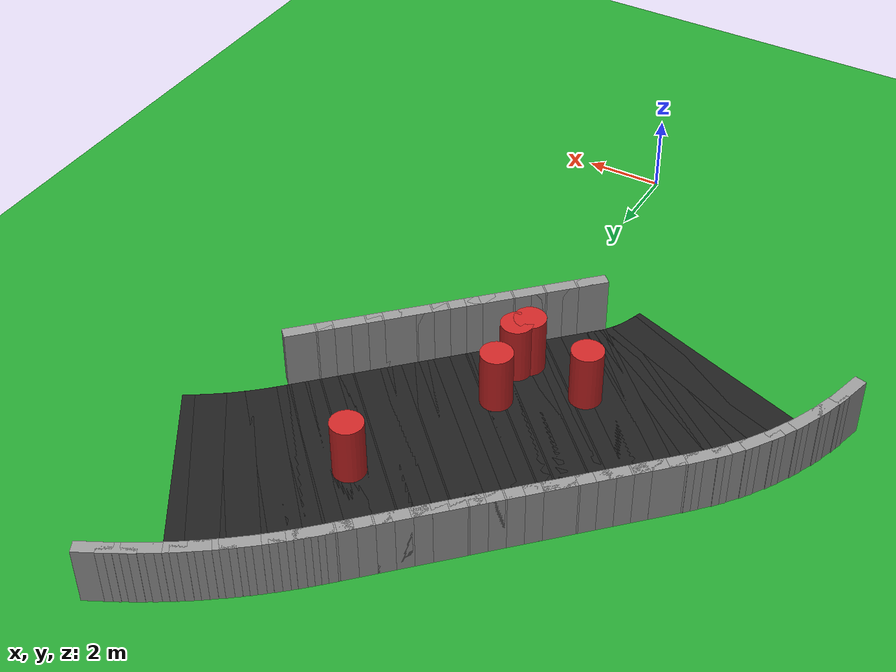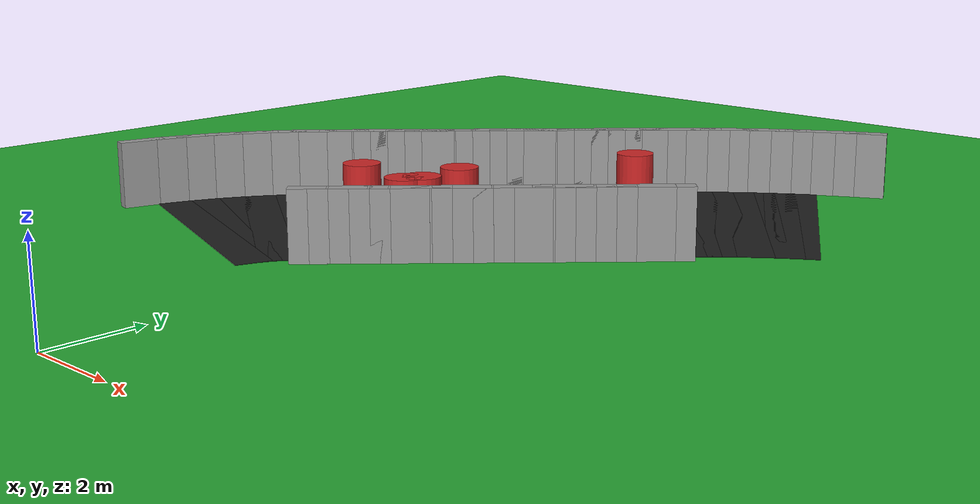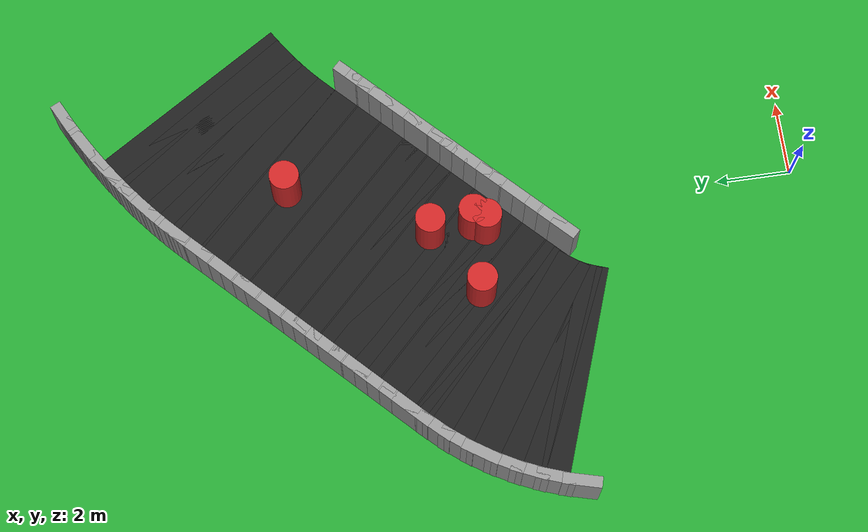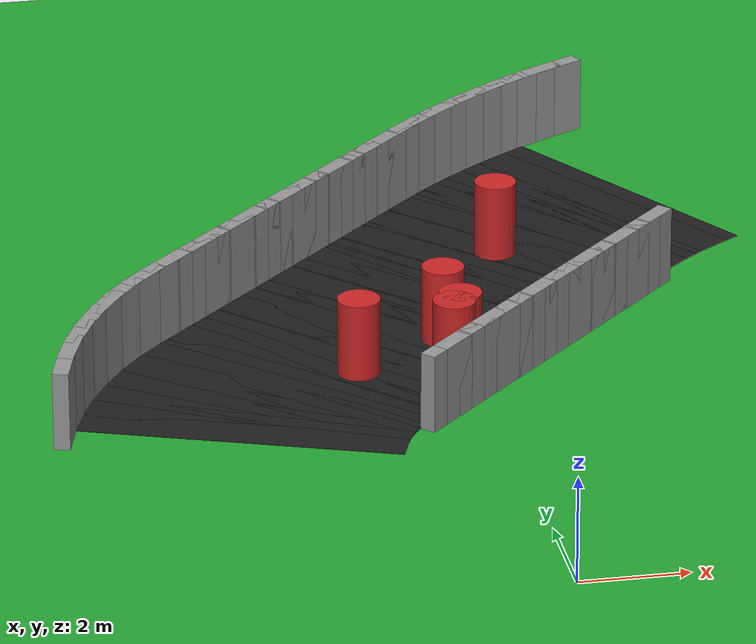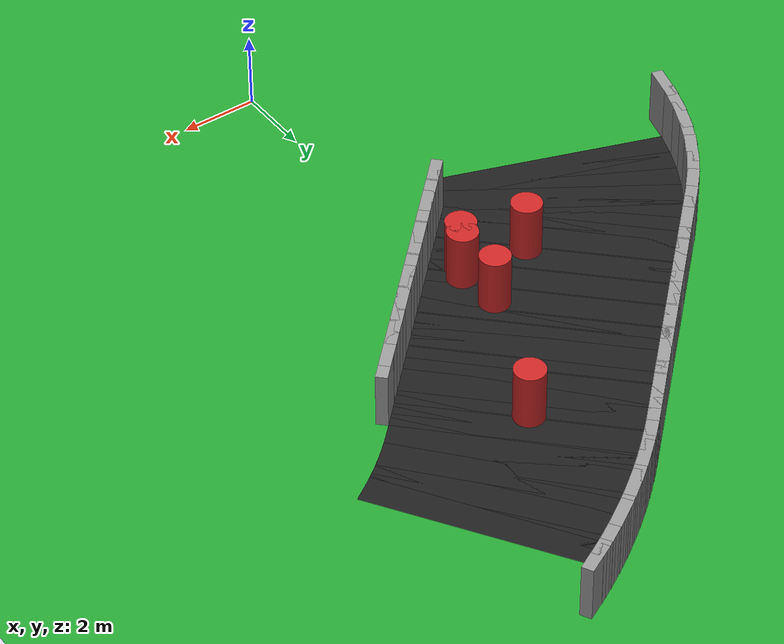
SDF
<sdf version="1.6">
 <world name="obstacle_mid">
  <include><uri>model://sun</uri></include>
  <model name="ground_plane">
   <static>true</static>
   <link name="link">
    <collision name="collision">
     <surface><friction><ode><mu>100</mu><mu2>50</mu2></ode></friction></surface>
     <geometry><plane><normal>0 0 1</normal><size>120 120</size></plane></geometry>
    </collision>
    <visual name="visual">
     <geometry><plane><normal>0 0 1</normal><size>120 120</size></plane></geometry>
     <material>
      <script><uri>file://media/materials/scripts/gazebo.material</uri><name>Gazebo/Green</name></script>
     </material>
    </visual>
   </link>
  </model>
  <model name="curbR_217">
   <static>true</static>
   <pose>3.685 19.184 0.750 0 0 -2.66708</pose>
   <link name="link">
    <collision name="collision"><geometry><box><size>0.856 0.300 1.500</size></box></geometry></collision>
    <visual name="visual">
     <geometry><box><size>0.856 0.300 1.500</size></box></geometry>
     <material>
      <script><uri>file://media/materials/scripts/gazebo.material</uri><name>Gazebo/Grey</name></script>
     </material>
    </visual>
   </link>
  </model>
  <model name="curbR_218">
   <static>true</static>
   <pose>3.247 18.950 0.750 0 0 -2.63436</pose>
   <link name="link">
    <collision name="collision"><geometry><box><size>0.856 0.300 1.500</size></box></geometry></collision>
    <visual name="visual">
     <geometry><box><size>0.856 0.300 1.500</size></box></geometry>
     <material>
      <script><uri>file://media/materials/scripts/gazebo.material</uri><name>Gazebo/Grey</name></script>
     </material>
    </visual>
   </link>
  </model>
  <model name="curbR_219">
   <static>true</static>
   <pose>2.818 18.702 0.750 0 0 -2.60163</pose>
   <link name="link">
    <collision name="collision"><geometry><box><size>0.856 0.300 1.500</size></box></geometry></collision>
    <visual name="visual">
     <geometry><box><size>0.856 0.300 1.500</size></box></geometry>
     <material>
      <script><uri>file://media/materials/scripts/gazebo.material</uri><name>Gazebo/Grey</name></script>
     </material>
    </visual>
   </link>
  </model>
  <model name="asphalt_220">
   <static>true</static>
   <pose>4.104 15.794 0.005 0 0 -2.56891</pose>
   <link name="link">
    <visual name="visual">
     <geometry><box><size>0.753 6.000 0.010</size></box></geometry>
     <material>
      <script><uri>file://media/materials/scripts/gazebo.material</uri><name>Gazebo/Black</name></script>
     </material>
    </visual>
   </link>
  </model>
  <model name="curbR_220">
   <static>true</static>
   <pose>2.397 18.441 0.750 0 0 -2.56891</pose>
   <link name="link">
    <collision name="collision"><geometry><box><size>0.856 0.300 1.500</size></box></geometry></collision>
    <visual name="visual">
     <geometry><box><size>0.856 0.300 1.500</size></box></geometry>
     <material>
      <script><uri>file://media/materials/scripts/gazebo.material</uri><name>Gazebo/Grey</name></script>
     </material>
    </visual>
   </link>
  </model>
  <model name="asphalt_221">
   <static>true</static>
   <pose>3.777 15.575 0.005 0 0 -2.53618</pose>
   <link name="link">
    <visual name="visual">
     <geometry><box><size>0.753 6.000 0.010</size></box></geometry>
     <material>
      <script><uri>file://media/materials/scripts/gazebo.material</uri><name>Gazebo/Black</name></script>
     </material>
    </visual>
   </link>
  </model>
  <model name="curbR_221">
   <static>true</static>
   <pose>1.985 18.165 0.750 0 0 -2.53618</pose>
   <link name="link">
    <collision name="collision"><geometry><box><size>0.856 0.300 1.500</size></box></geometry></collision>
    <visual name="visual">
     <geometry><box><size>0.856 0.300 1.500</size></box></geometry>
     <material>
      <script><uri>file://media/materials/scripts/gazebo.material</uri><name>Gazebo/Grey</name></script>
     </material>
    </visual>
   </link>
  </model>
  <model name="asphalt_222">
   <static>true</static>
   <pose>3.458 15.347 0.005 0 0 -2.50346</pose>
   <link name="link">
    <visual name="visual">
     <geometry><box><size>0.753 6.000 0.010</size></box></geometry>
     <material>
      <script><uri>file://media/materials/scripts/gazebo.material</uri><name>Gazebo/Black</name></script>
     </material>
    </visual>
   </link>
  </model>
  <model name="curbR_222">
   <static>true</static>
   <pose>1.582 17.876 0.750 0 0 -2.50346</pose>
   <link name="link">
    <collision name="collision"><geometry><box><size>0.856 0.300 1.500</size></box></geometry></collision>
    <visual name="visual">
     <geometry><box><size>0.856 0.300 1.500</size></box></geometry>
     <material>
      <script><uri>file://media/materials/scripts/gazebo.material</uri><name>Gazebo/Grey</name></script>
     </material>
    </visual>
   </link>
  </model>
  <model name="asphalt_223">
   <static>true</static>
   <pose>3.147 15.108 0.005 0 0 -2.47073</pose>
   <link name="link">
    <visual name="visual">
     <geometry><box><size>0.753 6.000 0.010</size></box></geometry>
     <material>
      <script><uri>file://media/materials/scripts/gazebo.material</uri><name>Gazebo/Black</name></script>
     </material>
    </visual>
   </link>
  </model>
  <model name="curbR_223">
   <static>true</static>
   <pose>1.189 17.575 0.750 0 0 -2.47073</pose>
   <link name="link">
    <collision name="collision"><geometry><box><size>0.856 0.300 1.500</size></box></geometry></collision>
    <visual name="visual">
     <geometry><box><size>0.856 0.300 1.500</size></box></geometry>
     <material>
      <script><uri>file://media/materials/scripts/gazebo.material</uri><name>Gazebo/Grey</name></script>
     </material>
    </visual>
   </link>
  </model>
  <model name="asphalt_224">
   <static>true</static>
   <pose>2.843 14.859 0.005 0 0 -2.43801</pose>
   <link name="link">
    <visual name="visual">
     <geometry><box><size>0.753 6.000 0.010</size></box></geometry>
     <material>
      <script><uri>file://media/materials/scripts/gazebo.material</uri><name>Gazebo/Black</name></script>
     </material>
    </visual>
   </link>
  </model>
  <model name="curbR_224">
   <static>true</static>
   <pose>0.806 17.260 0.750 0 0 -2.43801</pose>
   <link name="link">
    <collision name="collision"><geometry><box><size>0.856 0.300 1.500</size></box></geometry></collision>
    <visual name="visual">
     <geometry><box><size>0.856 0.300 1.500</size></box></geometry>
     <material>
      <script><uri>file://media/materials/scripts/gazebo.material</uri><name>Gazebo/Grey</name></script>
     </material>
    </visual>
   </link>
  </model>
  <model name="asphalt_225">
   <static>true</static>
   <pose>2.548 14.600 0.005 0 0 -2.40528</pose>
   <link name="link">
    <visual name="visual">
     <geometry><box><size>0.753 6.000 0.010</size></box></geometry>
     <material>
      <script><uri>file://media/materials/scripts/gazebo.material</uri><name>Gazebo/Black</name></script>
     </material>
    </visual>
   </link>
  </model>
  <model name="curbR_225">
   <static>true</static>
   <pose>0.433 16.933 0.750 0 0 -2.40528</pose>
   <link name="link">
    <collision name="collision"><geometry><box><size>0.856 0.300 1.500</size></box></geometry></collision>
    <visual name="visual">
     <geometry><box><size>0.856 0.300 1.500</size></box></geometry>
     <material>
      <script><uri>file://media/materials/scripts/gazebo.material</uri><name>Gazebo/Grey</name></script>
     </material>
    </visual>
   </link>
  </model>
  <model name="asphalt_226">
   <static>true</static>
   <pose>2.261 14.331 0.005 0 0 -2.37256</pose>
   <link name="link">
    <visual name="visual">
     <geometry><box><size>0.753 6.000 0.010</size></box></geometry>
     <material>
      <script><uri>file://media/materials/scripts/gazebo.material</uri><name>Gazebo/Black</name></script>
     </material>
    </visual>
   </link>
  </model>
  <model name="curbR_226">
   <static>true</static>
   <pose>0.071 16.595 0.750 0 0 -2.37256</pose>
   <link name="link">
    <collision name="collision"><geometry><box><size>0.856 0.300 1.500</size></box></geometry></collision>
    <visual name="visual">
     <geometry><box><size>0.856 0.300 1.500</size></box></geometry>
     <material>
      <script><uri>file://media/materials/scripts/gazebo.material</uri><name>Gazebo/Grey</name></script>
     </material>
    </visual>
   </link>
  </model>
  <model name="asphalt_227">
   <static>true</static>
   <pose>1.979 14.053 0.005 0 0 -2.35619</pose>
   <link name="link">
    <visual name="visual">
     <geometry><box><size>0.760 6.000 0.010</size></box></geometry>
     <material>
      <script><uri>file://media/materials/scripts/gazebo.material</uri><name>Gazebo/Black</name></script>
     </material>
    </visual>
   </link>
  </model>
  <model name="curbR_227">
   <static>true</static>
   <pose>-0.248 16.281 0.750 0 0 -2.35619</pose>
   <link name="link">
    <collision name="collision"><geometry><box><size>0.760 0.300 1.500</size></box></geometry></collision>
    <visual name="visual">
     <geometry><box><size>0.760 0.300 1.500</size></box></geometry>
     <material>
      <script><uri>file://media/materials/scripts/gazebo.material</uri><name>Gazebo/Grey</name></script>
     </material>
    </visual>
   </link>
  </model>
  <model name="asphalt_228">
   <static>true</static>
   <pose>1.696 13.770 0.005 0 0 -2.35619</pose>
   <link name="link">
    <visual name="visual">
     <geometry><box><size>0.760 6.000 0.010</size></box></geometry>
     <material>
      <script><uri>file://media/materials/scripts/gazebo.material</uri><name>Gazebo/Black</name></script>
     </material>
    </visual>
   </link>
  </model>
  <model name="curbL_228">
   <static>true</static>
   <pose>3.923 11.543 0.750 0 0 -2.35619</pose>
   <link name="link">
    <collision name="collision"><geometry><box><size>0.760 0.300 1.500</size></box></geometry></collision>
    <visual name="visual">
     <geometry><box><size>0.760 0.300 1.500</size></box></geometry>
     <material>
      <script><uri>file://media/materials/scripts/gazebo.material</uri><name>Gazebo/Grey</name></script>
     </material>
    </visual>
   </link>
  </model>
  <model name="curbR_228">
   <static>true</static>
   <pose>-0.531 15.998 0.750 0 0 -2.35619</pose>
   <link name="link">
    <collision name="collision"><geometry><box><size>0.760 0.300 1.500</size></box></geometry></collision>
    <visual name="visual">
     <geometry><box><size>0.760 0.300 1.500</size></box></geometry>
     <material>
      <script><uri>file://media/materials/scripts/gazebo.material</uri><name>Gazebo/Grey</name></script>
     </material>
    </visual>
   </link>
  </model>
  <model name="asphalt_229">
   <static>true</static>
   <pose>1.413 13.488 0.005 0 0 -2.35619</pose>
   <link name="link">
    <visual name="visual">
     <geometry><box><size>0.760 6.000 0.010</size></box></geometry>
     <material>
      <script><uri>file://media/materials/scripts/gazebo.material</uri><name>Gazebo/Black</name></script>
     </material>
    </visual>
   </link>
  </model>
  <model name="curbL_229">
   <static>true</static>
   <pose>3.641 11.260 0.750 0 0 -2.35619</pose>
   <link name="link">
    <collision name="collision"><geometry><box><size>0.760 0.300 1.500</size></box></geometry></collision>
    <visual name="visual">
     <geometry><box><size>0.760 0.300 1.500</size></box></geometry>
     <material>
      <script><uri>file://media/materials/scripts/gazebo.material</uri><name>Gazebo/Grey</name></script>
     </material>
    </visual>
   </link>
  </model>
  <model name="curbR_229">
   <static>true</static>
   <pose>-0.814 15.715 0.750 0 0 -2.35619</pose>
   <link name="link">
    <collision name="collision"><geometry><box><size>0.760 0.300 1.500</size></box></geometry></collision>
    <visual name="visual">
     <geometry><box><size>0.760 0.300 1.500</size></box></geometry>
     <material>
      <script><uri>file://media/materials/scripts/gazebo.material</uri><name>Gazebo/Grey</name></script>
     </material>
    </visual>
   </link>
  </model>
  <model name="asphalt_230">
   <static>true</static>
   <pose>1.130 13.205 0.005 0 0 -2.35619</pose>
   <link name="link">
    <visual name="visual">
     <geometry><box><size>0.760 6.000 0.010</size></box></geometry>
     <material>
      <script><uri>file://media/materials/scripts/gazebo.material</uri><name>Gazebo/Black</name></script>
     </material>
    </visual>
   </link>
  </model>
  <model name="curbL_230">
   <static>true</static>
   <pose>3.358 10.977 0.750 0 0 -2.35619</pose>
   <link name="link">
    <collision name="collision"><geometry><box><size>0.760 0.300 1.500</size></box></geometry></collision>
    <visual name="visual">
     <geometry><box><size>0.760 0.300 1.500</size></box></geometry>
     <material>
      <script><uri>file://media/materials/scripts/gazebo.material</uri><name>Gazebo/Grey</name></script>
     </material>
    </visual>
   </link>
  </model>
  <model name="curbR_230">
   <static>true</static>
   <pose>-1.097 15.432 0.750 0 0 -2.35619</pose>
   <link name="link">
    <collision name="collision"><geometry><box><size>0.760 0.300 1.500</size></box></geometry></collision>
    <visual name="visual">
     <geometry><box><size>0.760 0.300 1.500</size></box></geometry>
     <material>
      <script><uri>file://media/materials/scripts/gazebo.material</uri><name>Gazebo/Grey</name></script>
     </material>
    </visual>
   </link>
  </model>
  <model name="asphalt_231">
   <static>true</static>
   <pose>0.848 12.922 0.005 0 0 -2.35619</pose>
   <link name="link">
    <visual name="visual">
     <geometry><box><size>0.760 6.000 0.010</size></box></geometry>
     <material>
      <script><uri>file://media/materials/scripts/gazebo.material</uri><name>Gazebo/Black</name></script>
     </material>
    </visual>
   </link>
  </model>
  <model name="curbL_231">
   <static>true</static>
   <pose>3.075 10.695 0.750 0 0 -2.35619</pose>
   <link name="link">
    <collision name="collision"><geometry><box><size>0.760 0.300 1.500</size></box></geometry></collision>
    <visual name="visual">
     <geometry><box><size>0.760 0.300 1.500</size></box></geometry>
     <material>
      <script><uri>file://media/materials/scripts/gazebo.material</uri><name>Gazebo/Grey</name></script>
     </material>
    </visual>
   </link>
  </model>
  <model name="curbR_231">
   <static>true</static>
   <pose>-1.380 15.149 0.750 0 0 -2.35619</pose>
   <link name="link">
    <collision name="collision"><geometry><box><size>0.760 0.300 1.500</size></box></geometry></collision>
    <visual name="visual">
     <geometry><box><size>0.760 0.300 1.500</size></box></geometry>
     <material>
      <script><uri>file://media/materials/scripts/gazebo.material</uri><name>Gazebo/Grey</name></script>
     </material>
    </visual>
   </link>
  </model>
  <model name="asphalt_232">
   <static>true</static>
   <pose>0.565 12.639 0.005 0 0 -2.35619</pose>
   <link name="link">
    <visual name="visual">
     <geometry><box><size>0.760 6.000 0.010</size></box></geometry>
     <material>
      <script><uri>file://media/materials/scripts/gazebo.material</uri><name>Gazebo/Black</name></script>
     </material>
    </visual>
   </link>
  </model>
  <model name="curbL_232">
   <static>true</static>
   <pose>2.792 10.412 0.750 0 0 -2.35619</pose>
   <link name="link">
    <collision name="collision"><geometry><box><size>0.760 0.300 1.500</size></box></geometry></collision>
    <visual name="visual">
     <geometry><box><size>0.760 0.300 1.500</size></box></geometry>
     <material>
      <script><uri>file://media/materials/scripts/gazebo.material</uri><name>Gazebo/Grey</name></script>
     </material>
    </visual>
   </link>
  </model>
  <model name="curbR_232">
   <static>true</static>
   <pose>-1.663 14.866 0.750 0 0 -2.35619</pose>
   <link name="link">
    <collision name="collision"><geometry><box><size>0.760 0.300 1.500</size></box></geometry></collision>
    <visual name="visual">
     <geometry><box><size>0.760 0.300 1.500</size></box></geometry>
     <material>
      <script><uri>file://media/materials/scripts/gazebo.material</uri><name>Gazebo/Grey</name></script>
     </material>
    </visual>
   </link>
  </model>
  <model name="asphalt_233">
   <static>true</static>
   <pose>0.282 12.356 0.005 0 0 -2.35619</pose>
   <link name="link">
    <visual name="visual">
     <geometry><box><size>0.760 6.000 0.010</size></box></geometry>
     <material>
      <script><uri>file://media/materials/scripts/gazebo.material</uri><name>Gazebo/Black</name></script>
     </material>
    </visual>
   </link>
  </model>
  <model name="curbL_233">
   <static>true</static>
   <pose>2.509 10.129 0.750 0 0 -2.35619</pose>
   <link name="link">
    <collision name="collision"><geometry><box><size>0.760 0.300 1.500</size></box></geometry></collision>
    <visual name="visual">
     <geometry><box><size>0.760 0.300 1.500</size></box></geometry>
     <material>
      <script><uri>file://media/materials/scripts/gazebo.material</uri><name>Gazebo/Grey</name></script>
     </material>
    </visual>
   </link>
  </model>
  <model name="curbR_233">
   <static>true</static>
   <pose>-1.946 14.584 0.750 0 0 -2.35619</pose>
   <link name="link">
    <collision name="collision"><geometry><box><size>0.760 0.300 1.500</size></box></geometry></collision>
    <visual name="visual">
     <geometry><box><size>0.760 0.300 1.500</size></box></geometry>
     <material>
      <script><uri>file://media/materials/scripts/gazebo.material</uri><name>Gazebo/Grey</name></script>
     </material>
    </visual>
   </link>
  </model>
  <model name="asphalt_234">
   <static>true</static>
   <pose>-0.001 12.073 0.005 0 0 -2.35619</pose>
   <link name="link">
    <visual name="visual">
     <geometry><box><size>0.760 6.000 0.010</size></box></geometry>
     <material>
      <script><uri>file://media/materials/scripts/gazebo.material</uri><name>Gazebo/Black</name></script>
     </material>
    </visual>
   </link>
  </model>
  <model name="curbL_234">
   <static>true</static>
   <pose>2.226 9.846 0.750 0 0 -2.35619</pose>
   <link name="link">
    <collision name="collision"><geometry><box><size>0.760 0.300 1.500</size></box></geometry></collision>
    <visual name="visual">
     <geometry><box><size>0.760 0.300 1.500</size></box></geometry>
     <material>
      <script><uri>file://media/materials/scripts/gazebo.material</uri><name>Gazebo/Grey</name></script>
     </material>
    </visual>
   </link>
  </model>
  <model name="curbR_234">
   <static>true</static>
   <pose>-2.228 14.301 0.750 0 0 -2.35619</pose>
   <link name="link">
    <collision name="collision"><geometry><box><size>0.760 0.300 1.500</size></box></geometry></collision>
    <visual name="visual">
     <geometry><box><size>0.760 0.300 1.500</size></box></geometry>
     <material>
      <script><uri>file://media/materials/scripts/gazebo.material</uri><name>Gazebo/Grey</name></script>
     </material>
    </visual>
   </link>
  </model>
  <model name="asphalt_235">
   <static>true</static>
   <pose>-0.284 11.791 0.005 0 0 -2.35619</pose>
   <link name="link">
    <visual name="visual">
     <geometry><box><size>0.760 6.000 0.010</size></box></geometry>
     <material>
      <script><uri>file://media/materials/scripts/gazebo.material</uri><name>Gazebo/Black</name></script>
     </material>
    </visual>
   </link>
  </model>
  <model name="curbL_235">
   <static>true</static>
   <pose>1.944 9.563 0.750 0 0 -2.35619</pose>
   <link name="link">
    <collision name="collision"><geometry><box><size>0.760 0.300 1.500</size></box></geometry></collision>
    <visual name="visual">
     <geometry><box><size>0.760 0.300 1.500</size></box></geometry>
     <material>
      <script><uri>file://media/materials/scripts/gazebo.material</uri><name>Gazebo/Grey</name></script>
     </material>
    </visual>
   </link>
  </model>
  <model name="curbR_235">
   <static>true</static>
   <pose>-2.511 14.018 0.750 0 0 -2.35619</pose>
   <link name="link">
    <collision name="collision"><geometry><box><size>0.760 0.300 1.500</size></box></geometry></collision>
    <visual name="visual">
     <geometry><box><size>0.760 0.300 1.500</size></box></geometry>
     <material>
      <script><uri>file://media/materials/scripts/gazebo.material</uri><name>Gazebo/Grey</name></script>
     </material>
    </visual>
   </link>
  </model>
  <model name="asphalt_236">
   <static>true</static>
   <pose>-0.567 11.508 0.005 0 0 -2.35619</pose>
   <link name="link">
    <visual name="visual">
     <geometry><box><size>0.760 6.000 0.010</size></box></geometry>
     <material>
      <script><uri>file://media/materials/scripts/gazebo.material</uri><name>Gazebo/Black</name></script>
     </material>
    </visual>
   </link>
  </model>
  <model name="curbL_236">
   <static>true</static>
   <pose>1.661 9.280 0.750 0 0 -2.35619</pose>
   <link name="link">
    <collision name="collision"><geometry><box><size>0.760 0.300 1.500</size></box></geometry></collision>
    <visual name="visual">
     <geometry><box><size>0.760 0.300 1.500</size></box></geometry>
     <material>
      <script><uri>file://media/materials/scripts/gazebo.material</uri><name>Gazebo/Grey</name></script>
     </material>
    </visual>
   </link>
  </model>
  <model name="curbR_236">
   <static>true</static>
   <pose>-2.794 13.735 0.750 0 0 -2.35619</pose>
   <link name="link">
    <collision name="collision"><geometry><box><size>0.760 0.300 1.500</size></box></geometry></collision>
    <visual name="visual">
     <geometry><box><size>0.760 0.300 1.500</size></box></geometry>
     <material>
      <script><uri>file://media/materials/scripts/gazebo.material</uri><name>Gazebo/Grey</name></script>
     </material>
    </visual>
   </link>
  </model>
  <model name="asphalt_237">
   <static>true</static>
   <pose>-0.850 11.225 0.005 0 0 -2.35619</pose>
   <link name="link">
    <visual name="visual">
     <geometry><box><size>0.760 6.000 0.010</size></box></geometry>
     <material>
      <script><uri>file://media/materials/scripts/gazebo.material</uri><name>Gazebo/Black</name></script>
     </material>
    </visual>
   </link>
  </model>
  <model name="curbL_237">
   <static>true</static>
   <pose>1.378 8.998 0.750 0 0 -2.35619</pose>
   <link name="link">
    <collision name="collision"><geometry><box><size>0.760 0.300 1.500</size></box></geometry></collision>
    <visual name="visual">
     <geometry><box><size>0.760 0.300 1.500</size></box></geometry>
     <material>
      <script><uri>file://media/materials/scripts/gazebo.material</uri><name>Gazebo/Grey</name></script>
     </material>
    </visual>
   </link>
  </model>
  <model name="curbR_237">
   <static>true</static>
   <pose>-3.077 13.452 0.750 0 0 -2.35619</pose>
   <link name="link">
    <collision name="collision"><geometry><box><size>0.760 0.300 1.500</size></box></geometry></collision>
    <visual name="visual">
     <geometry><box><size>0.760 0.300 1.500</size></box></geometry>
     <material>
      <script><uri>file://media/materials/scripts/gazebo.material</uri><name>Gazebo/Grey</name></script>
     </material>
    </visual>
   </link>
  </model>
  <model name="asphalt_238">
   <static>true</static>
   <pose>-1.132 10.942 0.005 0 0 -2.35619</pose>
   <link name="link">
    <visual name="visual">
     <geometry><box><size>0.760 6.000 0.010</size></box></geometry>
     <material>
      <script><uri>file://media/materials/scripts/gazebo.material</uri><name>Gazebo/Black</name></script>
     </material>
    </visual>
   </link>
  </model>
  <model name="curbL_238">
   <static>true</static>
   <pose>1.095 8.715 0.750 0 0 -2.35619</pose>
   <link name="link">
    <collision name="collision"><geometry><box><size>0.760 0.300 1.500</size></box></geometry></collision>
    <visual name="visual">
     <geometry><box><size>0.760 0.300 1.500</size></box></geometry>
     <material>
      <script><uri>file://media/materials/scripts/gazebo.material</uri><name>Gazebo/Grey</name></script>
     </material>
    </visual>
   </link>
  </model>
  <model name="curbR_238">
   <static>true</static>
   <pose>-3.360 13.169 0.750 0 0 -2.35619</pose>
   <link name="link">
    <collision name="collision"><geometry><box><size>0.760 0.300 1.500</size></box></geometry></collision>
    <visual name="visual">
     <geometry><box><size>0.760 0.300 1.500</size></box></geometry>
     <material>
      <script><uri>file://media/materials/scripts/gazebo.material</uri><name>Gazebo/Grey</name></script>
     </material>
    </visual>
   </link>
  </model>
  <model name="asphalt_239">
   <static>true</static>
   <pose>-1.415 10.659 0.005 0 0 -2.35619</pose>
   <link name="link">
    <visual name="visual">
     <geometry><box><size>0.760 6.000 0.010</size></box></geometry>
     <material>
      <script><uri>file://media/materials/scripts/gazebo.material</uri><name>Gazebo/Black</name></script>
     </material>
    </visual>
   </link>
  </model>
  <model name="curbL_239">
   <static>true</static>
   <pose>0.812 8.432 0.750 0 0 -2.35619</pose>
   <link name="link">
    <collision name="collision"><geometry><box><size>0.760 0.300 1.500</size></box></geometry></collision>
    <visual name="visual">
     <geometry><box><size>0.760 0.300 1.500</size></box></geometry>
     <material>
      <script><uri>file://media/materials/scripts/gazebo.material</uri><name>Gazebo/Grey</name></script>
     </material>
    </visual>
   </link>
  </model>
  <model name="curbR_239">
   <static>true</static>
   <pose>-3.643 12.887 0.750 0 0 -2.35619</pose>
   <link name="link">
    <collision name="collision"><geometry><box><size>0.760 0.300 1.500</size></box></geometry></collision>
    <visual name="visual">
     <geometry><box><size>0.760 0.300 1.500</size></box></geometry>
     <material>
      <script><uri>file://media/materials/scripts/gazebo.material</uri><name>Gazebo/Grey</name></script>
     </material>
    </visual>
   </link>
  </model>
  <model name="asphalt_240">
   <static>true</static>
   <pose>-1.698 10.376 0.005 0 0 -2.35619</pose>
   <link name="link">
    <visual name="visual">
     <geometry><box><size>0.760 6.000 0.010</size></box></geometry>
     <material>
      <script><uri>file://media/materials/scripts/gazebo.material</uri><name>Gazebo/Black</name></script>
     </material>
    </visual>
   </link>
  </model>
  <model name="curbL_240">
   <static>true</static>
   <pose>0.529 8.149 0.750 0 0 -2.35619</pose>
   <link name="link">
    <collision name="collision"><geometry><box><size>0.760 0.300 1.500</size></box></geometry></collision>
    <visual name="visual">
     <geometry><box><size>0.760 0.300 1.500</size></box></geometry>
     <material>
      <script><uri>file://media/materials/scripts/gazebo.material</uri><name>Gazebo/Grey</name></script>
     </material>
    </visual>
   </link>
  </model>
  <model name="curbR_240">
   <static>true</static>
   <pose>-3.925 12.604 0.750 0 0 -2.35619</pose>
   <link name="link">
    <collision name="collision"><geometry><box><size>0.760 0.300 1.500</size></box></geometry></collision>
    <visual name="visual">
     <geometry><box><size>0.760 0.300 1.500</size></box></geometry>
     <material>
      <script><uri>file://media/materials/scripts/gazebo.material</uri><name>Gazebo/Grey</name></script>
     </material>
    </visual>
   </link>
  </model>
  <model name="asphalt_241">
   <static>true</static>
   <pose>-1.981 10.094 0.005 0 0 -2.35619</pose>
   <link name="link">
    <visual name="visual">
     <geometry><box><size>0.760 6.000 0.010</size></box></geometry>
     <material>
      <script><uri>file://media/materials/scripts/gazebo.material</uri><name>Gazebo/Black</name></script>
     </material>
    </visual>
   </link>
  </model>
  <model name="curbL_241">
   <static>true</static>
   <pose>0.247 7.866 0.750 0 0 -2.35619</pose>
   <link name="link">
    <collision name="collision"><geometry><box><size>0.760 0.300 1.500</size></box></geometry></collision>
    <visual name="visual">
     <geometry><box><size>0.760 0.300 1.500</size></box></geometry>
     <material>
      <script><uri>file://media/materials/scripts/gazebo.material</uri><name>Gazebo/Grey</name></script>
     </material>
    </visual>
   </link>
  </model>
  <model name="curbR_241">
   <static>true</static>
   <pose>-4.208 12.321 0.750 0 0 -2.35619</pose>
   <link name="link">
    <collision name="collision"><geometry><box><size>0.760 0.300 1.500</size></box></geometry></collision>
    <visual name="visual">
     <geometry><box><size>0.760 0.300 1.500</size></box></geometry>
     <material>
      <script><uri>file://media/materials/scripts/gazebo.material</uri><name>Gazebo/Grey</name></script>
     </material>
    </visual>
   </link>
  </model>
  <model name="asphalt_242">
   <static>true</static>
   <pose>-2.264 9.811 0.005 0 0 -2.35619</pose>
   <link name="link">
    <visual name="visual">
     <geometry><box><size>0.760 6.000 0.010</size></box></geometry>
     <material>
      <script><uri>file://media/materials/scripts/gazebo.material</uri><name>Gazebo/Black</name></script>
     </material>
    </visual>
   </link>
  </model>
  <model name="curbL_242">
   <static>true</static>
   <pose>-0.036 7.583 0.750 0 0 -2.35619</pose>
   <link name="link">
    <collision name="collision"><geometry><box><size>0.760 0.300 1.500</size></box></geometry></collision>
    <visual name="visual">
     <geometry><box><size>0.760 0.300 1.500</size></box></geometry>
     <material>
      <script><uri>file://media/materials/scripts/gazebo.material</uri><name>Gazebo/Grey</name></script>
     </material>
    </visual>
   </link>
  </model>
  <model name="curbR_242">
   <static>true</static>
   <pose>-4.491 12.038 0.750 0 0 -2.35619</pose>
   <link name="link">
    <collision name="collision"><geometry><box><size>0.760 0.300 1.500</size></box></geometry></collision>
    <visual name="visual">
     <geometry><box><size>0.760 0.300 1.500</size></box></geometry>
     <material>
      <script><uri>file://media/materials/scripts/gazebo.material</uri><name>Gazebo/Grey</name></script>
     </material>
    </visual>
   </link>
  </model>
  <model name="asphalt_243">
   <static>true</static>
   <pose>-2.547 9.528 0.005 0 0 -2.35619</pose>
   <link name="link">
    <visual name="visual">
     <geometry><box><size>0.760 6.000 0.010</size></box></geometry>
     <material>
      <script><uri>file://media/materials/scripts/gazebo.material</uri><name>Gazebo/Black</name></script>
     </material>
    </visual>
   </link>
  </model>
  <model name="curbL_243">
   <static>true</static>
   <pose>-0.319 7.300 0.750 0 0 -2.35619</pose>
   <link name="link">
    <collision name="collision"><geometry><box><size>0.760 0.300 1.500</size></box></geometry></collision>
    <visual name="visual">
     <geometry><box><size>0.760 0.300 1.500</size></box></geometry>
     <material>
      <script><uri>file://media/materials/scripts/gazebo.material</uri><name>Gazebo/Grey</name></script>
     </material>
    </visual>
   </link>
  </model>
  <model name="curbR_243">
   <static>true</static>
   <pose>-4.774 11.755 0.750 0 0 -2.35619</pose>
   <link name="link">
    <collision name="collision"><geometry><box><size>0.760 0.300 1.500</size></box></geometry></collision>
    <visual name="visual">
     <geometry><box><size>0.760 0.300 1.500</size></box></geometry>
     <material>
      <script><uri>file://media/materials/scripts/gazebo.material</uri><name>Gazebo/Grey</name></script>
     </material>
    </visual>
   </link>
  </model>
  <model name="asphalt_244">
   <static>true</static>
   <pose>-2.829 9.245 0.005 0 0 -2.35619</pose>
   <link name="link">
    <visual name="visual">
     <geometry><box><size>0.760 6.000 0.010</size></box></geometry>
     <material>
      <script><uri>file://media/materials/scripts/gazebo.material</uri><name>Gazebo/Black</name></script>
     </material>
    </visual>
   </link>
  </model>
  <model name="curbL_244">
   <static>true</static>
   <pose>-0.602 7.018 0.750 0 0 -2.35619</pose>
   <link name="link">
    <collision name="collision"><geometry><box><size>0.760 0.300 1.500</size></box></geometry></collision>
    <visual name="visual">
     <geometry><box><size>0.760 0.300 1.500</size></box></geometry>
     <material>
      <script><uri>file://media/materials/scripts/gazebo.material</uri><name>Gazebo/Grey</name></script>
     </material>
    </visual>
   </link>
  </model>
  <model name="curbR_244">
   <static>true</static>
   <pose>-5.057 11.472 0.750 0 0 -2.35619</pose>
   <link name="link">
    <collision name="collision"><geometry><box><size>0.760 0.300 1.500</size></box></geometry></collision>
    <visual name="visual">
     <geometry><box><size>0.760 0.300 1.500</size></box></geometry>
     <material>
      <script><uri>file://media/materials/scripts/gazebo.material</uri><name>Gazebo/Grey</name></script>
     </material>
    </visual>
   </link>
  </model>
  <model name="asphalt_245">
   <static>true</static>
   <pose>-3.112 8.962 0.005 0 0 -2.35619</pose>
   <link name="link">
    <visual name="visual">
     <geometry><box><size>0.760 6.000 0.010</size></box></geometry>
     <material>
      <script><uri>file://media/materials/scripts/gazebo.material</uri><name>Gazebo/Black</name></script>
     </material>
    </visual>
   </link>
  </model>
  <model name="curbL_245">
   <static>true</static>
   <pose>-0.885 6.735 0.750 0 0 -2.35619</pose>
   <link name="link">
    <collision name="collision"><geometry><box><size>0.760 0.300 1.500</size></box></geometry></collision>
    <visual name="visual">
     <geometry><box><size>0.760 0.300 1.500</size></box></geometry>
     <material>
      <script><uri>file://media/materials/scripts/gazebo.material</uri><name>Gazebo/Grey</name></script>
     </material>
    </visual>
   </link>
  </model>
  <model name="curbR_245">
   <static>true</static>
   <pose>-5.340 11.190 0.750 0 0 -2.35619</pose>
   <link name="link">
    <collision name="collision"><geometry><box><size>0.760 0.300 1.500</size></box></geometry></collision>
    <visual name="visual">
     <geometry><box><size>0.760 0.300 1.500</size></box></geometry>
     <material>
      <script><uri>file://media/materials/scripts/gazebo.material</uri><name>Gazebo/Grey</name></script>
     </material>
    </visual>
   </link>
  </model>
  <model name="asphalt_246">
   <static>true</static>
   <pose>-3.395 8.679 0.005 0 0 -2.35619</pose>
   <link name="link">
    <visual name="visual">
     <geometry><box><size>0.760 6.000 0.010</size></box></geometry>
     <material>
      <script><uri>file://media/materials/scripts/gazebo.material</uri><name>Gazebo/Black</name></script>
     </material>
    </visual>
   </link>
  </model>
  <model name="curbL_246">
   <static>true</static>
   <pose>-1.168 6.452 0.750 0 0 -2.35619</pose>
   <link name="link">
    <collision name="collision"><geometry><box><size>0.760 0.300 1.500</size></box></geometry></collision>
    <visual name="visual">
     <geometry><box><size>0.760 0.300 1.500</size></box></geometry>
     <material>
      <script><uri>file://media/materials/scripts/gazebo.material</uri><name>Gazebo/Grey</name></script>
     </material>
    </visual>
   </link>
  </model>
  <model name="curbR_246">
   <static>true</static>
   <pose>-5.622 10.907 0.750 0 0 -2.35619</pose>
   <link name="link">
    <collision name="collision"><geometry><box><size>0.760 0.300 1.500</size></box></geometry></collision>
    <visual name="visual">
     <geometry><box><size>0.760 0.300 1.500</size></box></geometry>
     <material>
      <script><uri>file://media/materials/scripts/gazebo.material</uri><name>Gazebo/Grey</name></script>
     </material>
    </visual>
   </link>
  </model>
  <model name="asphalt_247">
   <static>true</static>
   <pose>-3.674 8.389 0.005 0 0 -2.31557</pose>
   <link name="link">
    <visual name="visual">
     <geometry><box><size>0.766 6.000 0.010</size></box></geometry>
     <material>
      <script><uri>file://media/materials/scripts/gazebo.material</uri><name>Gazebo/Black</name></script>
     </material>
    </visual>
   </link>
  </model>
  <model name="curbR_247">
   <static>true</static>
   <pose>-5.988 10.522 0.750 0 0 -2.31557</pose>
   <link name="link">
    <collision name="collision"><geometry><box><size>1.022 0.300 1.500</size></box></geometry></collision>
    <visual name="visual">
     <geometry><box><size>1.022 0.300 1.500</size></box></geometry>
     <material>
      <script><uri>file://media/materials/scripts/gazebo.material</uri><name>Gazebo/Grey</name></script>
     </material>
    </visual>
   </link>
  </model>
  <model name="asphalt_248">
   <static>true</static>
   <pose>-3.937 8.079 0.005 0 0 -2.23432</pose>
   <link name="link">
    <visual name="visual">
     <geometry><box><size>0.766 6.000 0.010</size></box></geometry>
     <material>
      <script><uri>file://media/materials/scripts/gazebo.material</uri><name>Gazebo/Black</name></script>
     </material>
    </visual>
   </link>
  </model>
  <model name="curbR_248">
   <static>true</static>
   <pose>-6.417 10.018 0.750 0 0 -2.23432</pose>
   <link name="link">
    <collision name="collision"><geometry><box><size>1.022 0.300 1.500</size></box></geometry></collision>
    <visual name="visual">
     <geometry><box><size>1.022 0.300 1.500</size></box></geometry>
     <material>
      <script><uri>file://media/materials/scripts/gazebo.material</uri><name>Gazebo/Grey</name></script>
     </material>
    </visual>
   </link>
  </model>
  <model name="asphalt_249">
   <static>true</static>
   <pose>-4.174 7.750 0.005 0 0 -2.15307</pose>
   <link name="link">
    <visual name="visual">
     <geometry><box><size>0.766 6.000 0.010</size></box></geometry>
     <material>
      <script><uri>file://media/materials/scripts/gazebo.material</uri><name>Gazebo/Black</name></script>
     </material>
    </visual>
   </link>
  </model>
  <model name="curbR_249">
   <static>true</static>
   <pose>-6.803 9.480 0.750 0 0 -2.15307</pose>
   <link name="link">
    <collision name="collision"><geometry><box><size>1.022 0.300 1.500</size></box></geometry></collision>
    <visual name="visual">
     <geometry><box><size>1.022 0.300 1.500</size></box></geometry>
     <material>
      <script><uri>file://media/materials/scripts/gazebo.material</uri><name>Gazebo/Grey</name></script>
     </material>
    </visual>
   </link>
  </model>
  <model name="asphalt_250">
   <static>true</static>
   <pose>-4.383 7.402 0.005 0 0 -2.07183</pose>
   <link name="link">
    <visual name="visual">
     <geometry><box><size>0.766 6.000 0.010</size></box></geometry>
     <material>
      <script><uri>file://media/materials/scripts/gazebo.material</uri><name>Gazebo/Black</name></script>
     </material>
    </visual>
   </link>
  </model>
  <model name="curbR_250">
   <static>true</static>
   <pose>-7.144 8.913 0.750 0 0 -2.07183</pose>
   <link name="link">
    <collision name="collision"><geometry><box><size>1.022 0.300 1.500</size></box></geometry></collision>
    <visual name="visual">
     <geometry><box><size>1.022 0.300 1.500</size></box></geometry>
     <material>
      <script><uri>file://media/materials/scripts/gazebo.material</uri><name>Gazebo/Grey</name></script>
     </material>
    </visual>
   </link>
  </model>
  <model name="asphalt_251">
   <static>true</static>
   <pose>-4.563 7.038 0.005 0 0 -1.99058</pose>
   <link name="link">
    <visual name="visual">
     <geometry><box><size>0.766 6.000 0.010</size></box></geometry>
     <material>
      <script><uri>file://media/materials/scripts/gazebo.material</uri><name>Gazebo/Black</name></script>
     </material>
    </visual>
   </link>
  </model>
  <model name="curbR_251">
   <static>true</static>
   <pose>-7.438 8.321 0.750 0 0 -1.99058</pose>
   <link name="link">
    <collision name="collision"><geometry><box><size>1.022 0.300 1.500</size></box></geometry></collision>
    <visual name="visual">
     <geometry><box><size>1.022 0.300 1.500</size></box></geometry>
     <material>
      <script><uri>file://media/materials/scripts/gazebo.material</uri><name>Gazebo/Grey</name></script>
     </material>
    </visual>
   </link>
  </model>
  <model name="asphalt_252">
   <static>true</static>
   <pose>-4.714 6.661 0.005 0 0 -1.90933</pose>
   <link name="link">
    <visual name="visual">
     <geometry><box><size>0.766 6.000 0.010</size></box></geometry>
     <material>
      <script><uri>file://media/materials/scripts/gazebo.material</uri><name>Gazebo/Black</name></script>
     </material>
    </visual>
   </link>
  </model>
  <model name="curbR_252">
   <static>true</static>
   <pose>-7.682 7.706 0.750 0 0 -1.90933</pose>
   <link name="link">
    <collision name="collision"><geometry><box><size>1.022 0.300 1.500</size></box></geometry></collision>
    <visual name="visual">
     <geometry><box><size>1.022 0.300 1.500</size></box></geometry>
     <material>
      <script><uri>file://media/materials/scripts/gazebo.material</uri><name>Gazebo/Grey</name></script>
     </material>
    </visual>
   </link>
  </model>
  <model name="curbR_253">
   <static>true</static>
   <pose>-7.877 7.074 0.750 0 0 -1.82808</pose>
   <link name="link">
    <collision name="collision"><geometry><box><size>1.022 0.300 1.500</size></box></geometry></collision>
    <visual name="visual">
     <geometry><box><size>1.022 0.300 1.500</size></box></geometry>
     <material>
      <script><uri>file://media/materials/scripts/gazebo.material</uri><name>Gazebo/Grey</name></script>
     </material>
    </visual>
   </link>
  </model>
  <model name="obs_14">
   <static>true</static>
   <pose>-0.459 9.906 0.750 0 0 0</pose>
   <link name="link">
    <collision name="collision">
     <geometry><cylinder><radius>0.400</radius><length>1.500</length></cylinder></geometry>
    </collision>
    <visual name="visual">
     <geometry><cylinder><radius>0.400</radius><length>1.500</length></cylinder></geometry>
     <material>
      <script><uri>file://media/materials/scripts/gazebo.material</uri><name>Gazebo/Red</name></script>
     </material>
    </visual>
   </link>
  </model>
  <model name="obs_15">
   <static>true</static>
   <pose>-0.529 8.417 0.750 0 0 0</pose>
   <link name="link">
    <collision name="collision">
     <geometry><cylinder><radius>0.400</radius><length>1.500</length></cylinder></geometry>
    </collision>
    <visual name="visual">
     <geometry><cylinder><radius>0.400</radius><length>1.500</length></cylinder></geometry>
     <material>
      <script><uri>file://media/materials/scripts/gazebo.material</uri><name>Gazebo/Red</name></script>
     </material>
    </visual>
   </link>
  </model>
  <model name="obs_16">
   <static>true</static>
   <pose>-0.350 8.738 0.750 0 0 0</pose>
   <link name="link">
    <collision name="collision">
     <geometry><cylinder><radius>0.400</radius><length>1.500</length></cylinder></geometry>
    </collision>
    <visual name="visual">
     <geometry><cylinder><radius>0.400</radius><length>1.500</length></cylinder></geometry>
     <material>
      <script><uri>file://media/materials/scripts/gazebo.material</uri><name>Gazebo/Red</name></script>
     </material>
    </visual>
   </link>
  </model>
  <model name="obs_17">
   <static>true</static>
   <pose>1.253 13.570 0.750 0 0 0</pose>
   <link name="link">
    <collision name="collision">
     <geometry><cylinder><radius>0.400</radius><length>1.500</length></cylinder></geometry>
    </collision>
    <visual name="visual">
     <geometry><cylinder><radius>0.400</radius><length>1.500</length></cylinder></geometry>
     <material>
      <script><uri>file://media/materials/scripts/gazebo.material</uri><name>Gazebo/Red</name></script>
     </material>
    </visual>
   </link>
  </model>
  <model name="obs_18">
   <static>true</static>
   <pose>-2.237 8.784 0.750 0 0 0</pose>
   <link name="link">
    <collision name="collision">
     <geometry><cylinder><radius>0.400</radius><length>1.500</length></cylinder></geometry>
    </collision>
    <visual name="visual">
     <geometry><cylinder><radius>0.400</radius><length>1.500</length></cylinder></geometry>
     <material>
      <script><uri>file://media/materials/scripts/gazebo.material</uri><name>Gazebo/Red</name></script>
     </material>
    </visual>
   </link>
  </model>
 </world>
</sdf>
